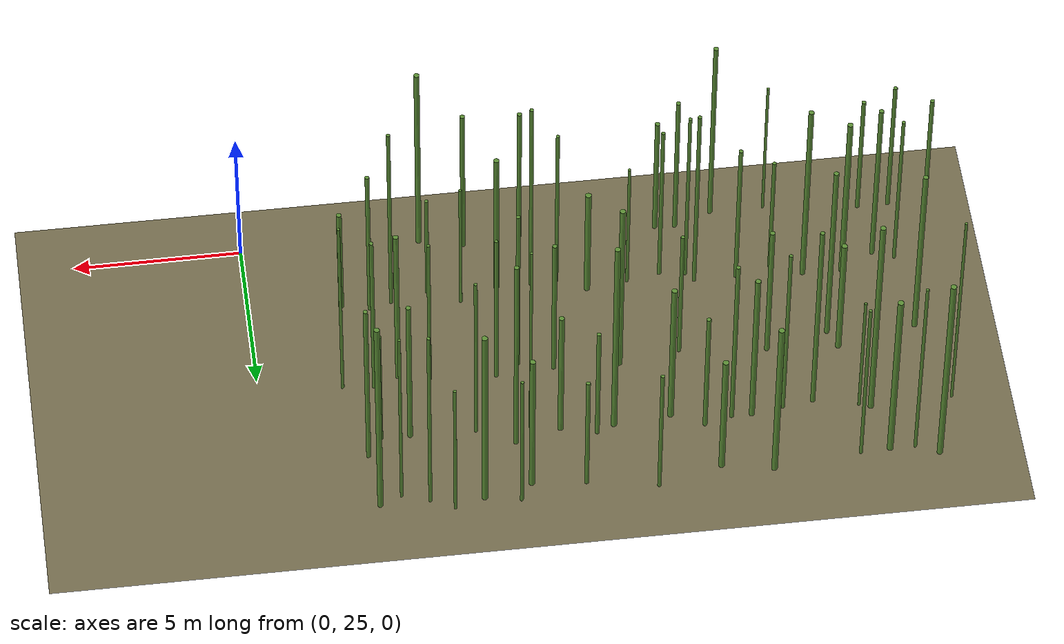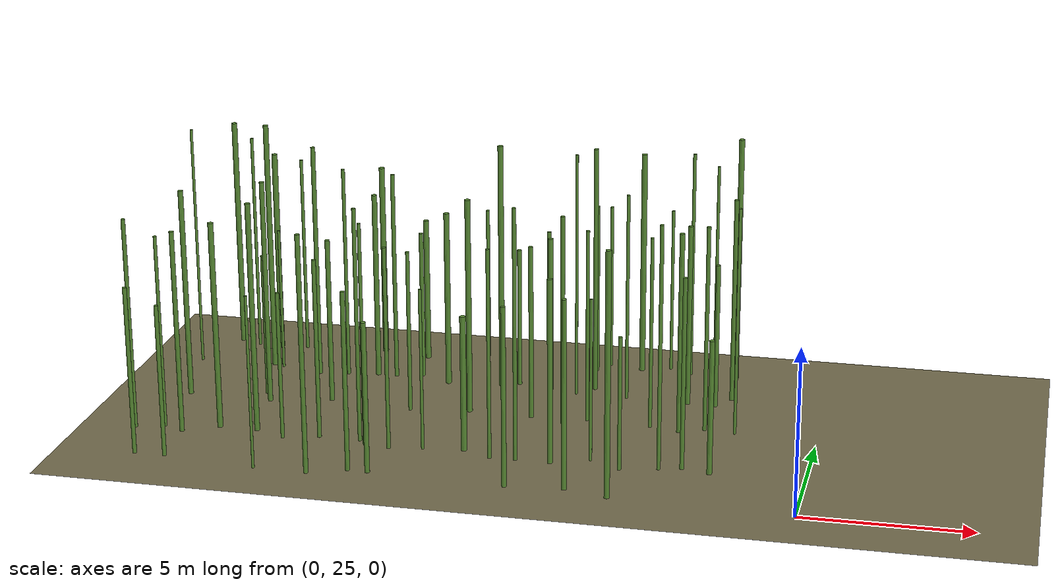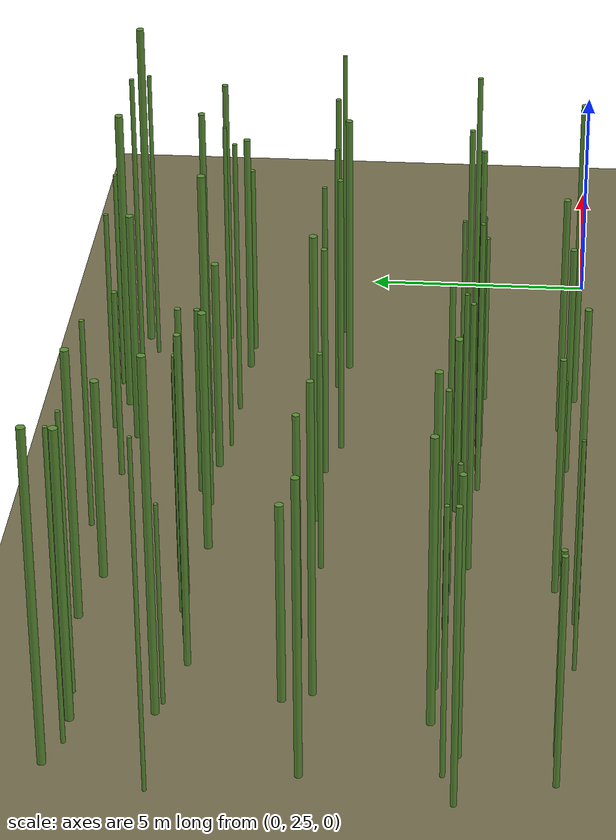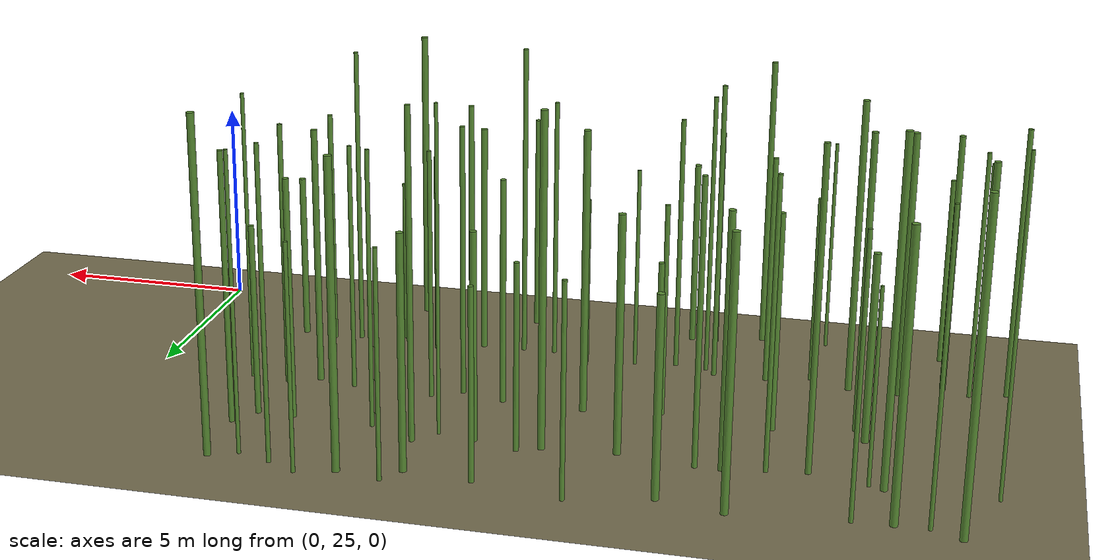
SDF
<sdf version="1.9">
 <world name="bamboo_field">
  <model name="ground_plane">
   <static>true</static>
   <link name="link">
    <collision name="collision">
     <geometry><plane><normal>0 0 1</normal><size>80.0 80.0</size></plane></geometry>
    </collision>
    <visual name="visual">
     <geometry><plane><normal>0 0 1</normal><size>80.0 80.0</size></plane></geometry>
     <material><diffuse>0.45 0.42 0.30 1</diffuse></material>
    </visual>
   </link>
  </model>
  <model name="bamboo_1699">
   <static>true</static>
   <pose>-19.48246002380169 25.367734125350342 2.5699282483919275 0 0 0</pose>
   <link name="link">
    <collision name="collision">
     <geometry>
      <cylinder><radius>0.061285565998683705</radius><length>5.139856496783855</length></cylinder>
     </geometry>
    </collision>
    <visual name="visual">
     <geometry>
      <cylinder><radius>0.061285565998683705</radius><length>5.139856496783855</length></cylinder>
     </geometry>
     <material><diffuse>0.35 0.55 0.20 1</diffuse><specular>0.1 0.1 0.1 1</specular></material>
    </visual>
   </link>
  </model>
  <model name="bamboo_1700">
   <static>true</static>
   <pose>-18.561662377056688 25.376804361869656 2.32708575424874 0 0 0</pose>
   <link name="link">
    <collision name="collision">
     <geometry>
      <cylinder><radius>0.06108684449624939</radius><length>4.65417150849748</length></cylinder>
     </geometry>
    </collision>
    <visual name="visual">
     <geometry>
      <cylinder><radius>0.06108684449624939</radius><length>4.65417150849748</length></cylinder>
     </geometry>
     <material><diffuse>0.35 0.55 0.20 1</diffuse><specular>0.1 0.1 0.1 1</specular></material>
    </visual>
   </link>
  </model>
  <model name="bamboo_1701">
   <static>true</static>
   <pose>-15.731640753012478 25.061634815160502 2.6380515564790294 0 0 0</pose>
   <link name="link">
    <collision name="collision">
     <geometry>
      <cylinder><radius>0.040611224457950804</radius><length>5.276103112958059</length></cylinder>
     </geometry>
    </collision>
    <visual name="visual">
     <geometry>
      <cylinder><radius>0.040611224457950804</radius><length>5.276103112958059</length></cylinder>
     </geometry>
     <material><diffuse>0.35 0.55 0.20 1</diffuse><specular>0.1 0.1 0.1 1</specular></material>
    </visual>
   </link>
  </model>
  <model name="bamboo_1703">
   <static>true</static>
   <pose>-14.1333928948903 25.053819336167248 3.6048367903860044 0 0 0</pose>
   <link name="link">
    <collision name="collision">
     <geometry>
      <cylinder><radius>0.0701818023648579</radius><length>7.209673580772009</length></cylinder>
     </geometry>
    </collision>
    <visual name="visual">
     <geometry>
      <cylinder><radius>0.0701818023648579</radius><length>7.209673580772009</length></cylinder>
     </geometry>
     <material><diffuse>0.35 0.55 0.20 1</diffuse><specular>0.1 0.1 0.1 1</specular></material>
    </visual>
   </link>
  </model>
  <model name="bamboo_1704">
   <static>true</static>
   <pose>-13.009316633082662 25.479355770893243 2.7297235743950625 0 0 0</pose>
   <link name="link">
    <collision name="collision">
     <geometry>
      <cylinder><radius>0.06675120829484248</radius><length>5.459447148790125</length></cylinder>
     </geometry>
    </collision>
    <visual name="visual">
     <geometry>
      <cylinder><radius>0.06675120829484248</radius><length>5.459447148790125</length></cylinder>
     </geometry>
     <material><diffuse>0.35 0.55 0.20 1</diffuse><specular>0.1 0.1 0.1 1</specular></material>
    </visual>
   </link>
  </model>
  <model name="bamboo_1705">
   <static>true</static>
   <pose>-12.410497305412347 25.446765568639556 2.3007744402729977 0 0 0</pose>
   <link name="link">
    <collision name="collision">
     <geometry>
      <cylinder><radius>0.0737359454780851</radius><length>4.601548880545995</length></cylinder>
     </geometry>
    </collision>
    <visual name="visual">
     <geometry>
      <cylinder><radius>0.0737359454780851</radius><length>4.601548880545995</length></cylinder>
     </geometry>
     <material><diffuse>0.35 0.55 0.20 1</diffuse><specular>0.1 0.1 0.1 1</specular></material>
    </visual>
   </link>
  </model>
  <model name="bamboo_1709">
   <static>true</static>
   <pose>-8.327943487058882 25.30991782958421 2.714488964258199 0 0 0</pose>
   <link name="link">
    <collision name="collision">
     <geometry>
      <cylinder><radius>0.06978894528436783</radius><length>5.428977928516398</length></cylinder>
     </geometry>
    </collision>
    <visual name="visual">
     <geometry>
      <cylinder><radius>0.06978894528436783</radius><length>5.428977928516398</length></cylinder>
     </geometry>
     <material><diffuse>0.35 0.55 0.20 1</diffuse><specular>0.1 0.1 0.1 1</specular></material>
    </visual>
   </link>
  </model>
  <model name="bamboo_1710">
   <static>true</static>
   <pose>-6.624005052112362 25.47313855809536 2.8622010930287343 0 0 0</pose>
   <link name="link">
    <collision name="collision">
     <geometry>
      <cylinder><radius>0.07164600115025427</radius><length>5.7244021860574685</length></cylinder>
     </geometry>
    </collision>
    <visual name="visual">
     <geometry>
      <cylinder><radius>0.07164600115025427</radius><length>5.7244021860574685</length></cylinder>
     </geometry>
     <material><diffuse>0.35 0.55 0.20 1</diffuse><specular>0.1 0.1 0.1 1</specular></material>
    </visual>
   </link>
  </model>
  <model name="bamboo_1711">
   <static>true</static>
   <pose>-5.327814186927504 25.15933273862661 3.6698358048836335 0 0 0</pose>
   <link name="link">
    <collision name="collision">
     <geometry>
      <cylinder><radius>0.08127857048197853</radius><length>7.339671609767267</length></cylinder>
     </geometry>
    </collision>
    <visual name="visual">
     <geometry>
      <cylinder><radius>0.08127857048197853</radius><length>7.339671609767267</length></cylinder>
     </geometry>
     <material><diffuse>0.35 0.55 0.20 1</diffuse><specular>0.1 0.1 0.1 1</specular></material>
    </visual>
   </link>
  </model>
  <model name="bamboo_1770">
   <static>true</static>
   <pose>-20.188963223017147 27.253954123116273 3.275765950783475 0 0 0</pose>
   <link name="link">
    <collision name="collision">
     <geometry>
      <cylinder><radius>0.06215991666258562</radius><length>6.55153190156695</length></cylinder>
     </geometry>
    </collision>
    <visual name="visual">
     <geometry>
      <cylinder><radius>0.06215991666258562</radius><length>6.55153190156695</length></cylinder>
     </geometry>
     <material><diffuse>0.35 0.55 0.20 1</diffuse><specular>0.1 0.1 0.1 1</specular></material>
    </visual>
   </link>
  </model>
  <model name="bamboo_1771">
   <static>true</static>
   <pose>-19.330448469256837 27.497374817100873 3.0035593406168193 0 0 0</pose>
   <link name="link">
    <collision name="collision">
     <geometry>
      <cylinder><radius>0.05066082243144524</radius><length>6.007118681233639</length></cylinder>
     </geometry>
    </collision>
    <visual name="visual">
     <geometry>
      <cylinder><radius>0.05066082243144524</radius><length>6.007118681233639</length></cylinder>
     </geometry>
     <material><diffuse>0.35 0.55 0.20 1</diffuse><specular>0.1 0.1 0.1 1</specular></material>
    </visual>
   </link>
  </model>
  <model name="bamboo_1772">
   <static>true</static>
   <pose>-18.705074369912523 27.23556656107094 3.142016852973211 0 0 0</pose>
   <link name="link">
    <collision name="collision">
     <geometry>
      <cylinder><radius>0.07047633439685848</radius><length>6.284033705946422</length></cylinder>
     </geometry>
    </collision>
    <visual name="visual">
     <geometry>
      <cylinder><radius>0.07047633439685848</radius><length>6.284033705946422</length></cylinder>
     </geometry>
     <material><diffuse>0.35 0.55 0.20 1</diffuse><specular>0.1 0.1 0.1 1</specular></material>
    </visual>
   </link>
  </model>
  <model name="bamboo_1773">
   <static>true</static>
   <pose>-17.69674091146032 27.795790040842505 3.2202464589862636 0 0 0</pose>
   <link name="link">
    <collision name="collision">
     <geometry>
      <cylinder><radius>0.08261786422056822</radius><length>6.440492917972527</length></cylinder>
     </geometry>
    </collision>
    <visual name="visual">
     <geometry>
      <cylinder><radius>0.08261786422056822</radius><length>6.440492917972527</length></cylinder>
     </geometry>
     <material><diffuse>0.35 0.55 0.20 1</diffuse><specular>0.1 0.1 0.1 1</specular></material>
    </visual>
   </link>
  </model>
  <model name="bamboo_1774">
   <static>true</static>
   <pose>-16.525703778261047 27.779085635165725 3.5595098246107737 0 0 0</pose>
   <link name="link">
    <collision name="collision">
     <geometry>
      <cylinder><radius>0.07943743162487044</radius><length>7.119019649221547</length></cylinder>
     </geometry>
    </collision>
    <visual name="visual">
     <geometry>
      <cylinder><radius>0.07943743162487044</radius><length>7.119019649221547</length></cylinder>
     </geometry>
     <material><diffuse>0.35 0.55 0.20 1</diffuse><specular>0.1 0.1 0.1 1</specular></material>
    </visual>
   </link>
  </model>
  <model name="bamboo_1775">
   <static>true</static>
   <pose>-15.591873823828186 27.373848653330235 2.2899730549191295 0 0 0</pose>
   <link name="link">
    <collision name="collision">
     <geometry>
      <cylinder><radius>0.05518090604647663</radius><length>4.579946109838259</length></cylinder>
     </geometry>
    </collision>
    <visual name="visual">
     <geometry>
      <cylinder><radius>0.05518090604647663</radius><length>4.579946109838259</length></cylinder>
     </geometry>
     <material><diffuse>0.35 0.55 0.20 1</diffuse><specular>0.1 0.1 0.1 1</specular></material>
    </visual>
   </link>
  </model>
  <model name="bamboo_1776">
   <static>true</static>
   <pose>-14.535407218154361 27.65965107413659 2.787084412018884 0 0 0</pose>
   <link name="link">
    <collision name="collision">
     <geometry>
      <cylinder><radius>0.061264895634087324</radius><length>5.574168824037768</length></cylinder>
     </geometry>
    </collision>
    <visual name="visual">
     <geometry>
      <cylinder><radius>0.061264895634087324</radius><length>5.574168824037768</length></cylinder>
     </geometry>
     <material><diffuse>0.35 0.55 0.20 1</diffuse><specular>0.1 0.1 0.1 1</specular></material>
    </visual>
   </link>
  </model>
  <model name="bamboo_1777">
   <static>true</static>
   <pose>-13.283271290641306 27.66302917284762 3.6107415130724054 0 0 0</pose>
   <link name="link">
    <collision name="collision">
     <geometry>
      <cylinder><radius>0.05768059791840341</radius><length>7.221483026144811</length></cylinder>
     </geometry>
    </collision>
    <visual name="visual">
     <geometry>
      <cylinder><radius>0.05768059791840341</radius><length>7.221483026144811</length></cylinder>
     </geometry>
     <material><diffuse>0.35 0.55 0.20 1</diffuse><specular>0.1 0.1 0.1 1</specular></material>
    </visual>
   </link>
  </model>
  <model name="bamboo_1778">
   <static>true</static>
   <pose>-13.051611649596147 27.387527783974686 3.433345396160026 0 0 0</pose>
   <link name="link">
    <collision name="collision">
     <geometry><cylinder><radius>0.050430452101698</radius><length>6.866690792320052</length></cylinder></geometry>
    </collision>
    <visual name="visual">
     <geometry><cylinder><radius>0.050430452101698</radius><length>6.866690792320052</length></cylinder></geometry>
     <material><diffuse>0.35 0.55 0.20 1</diffuse><specular>0.1 0.1 0.1 1</specular></material>
    </visual>
   </link>
  </model>
  <model name="bamboo_1779">
   <static>true</static>
   <pose>-12.289614652847362 27.276581051332286 3.1199445238562964 0 0 0</pose>
   <link name="link">
    <collision name="collision">
     <geometry>
      <cylinder><radius>0.056284256636376734</radius><length>6.239889047712593</length></cylinder>
     </geometry>
    </collision>
    <visual name="visual">
     <geometry>
      <cylinder><radius>0.056284256636376734</radius><length>6.239889047712593</length></cylinder>
     </geometry>
     <material><diffuse>0.35 0.55 0.20 1</diffuse><specular>0.1 0.1 0.1 1</specular></material>
    </visual>
   </link>
  </model>
  <model name="bamboo_1780">
   <static>true</static>
   <pose>-11.300215659863339 27.46187304216942 2.4862756305995277 0 0 0</pose>
   <link name="link">
    <collision name="collision">
     <geometry>
      <cylinder><radius>0.04534172880441953</radius><length>4.972551261199055</length></cylinder>
     </geometry>
    </collision>
    <visual name="visual">
     <geometry>
      <cylinder><radius>0.04534172880441953</radius><length>4.972551261199055</length></cylinder>
     </geometry>
     <material><diffuse>0.35 0.55 0.20 1</diffuse><specular>0.1 0.1 0.1 1</specular></material>
    </visual>
   </link>
  </model>
  <model name="bamboo_1781">
   <static>true</static>
   <pose>-10.077955429052208 27.60755582941468 2.0919999000613085 0 0 0</pose>
   <link name="link">
    <collision name="collision">
     <geometry>
      <cylinder><radius>0.08855665860574995</radius><length>4.183999800122617</length></cylinder>
     </geometry>
    </collision>
    <visual name="visual">
     <geometry>
      <cylinder><radius>0.08855665860574995</radius><length>4.183999800122617</length></cylinder>
     </geometry>
     <material><diffuse>0.35 0.55 0.20 1</diffuse><specular>0.1 0.1 0.1 1</specular></material>
    </visual>
   </link>
  </model>
  <model name="bamboo_1782">
   <static>true</static>
   <pose>-9.213479981732215 27.197103094493315 3.2134096858816497 0 0 0</pose>
   <link name="link">
    <collision name="collision">
     <geometry>
      <cylinder><radius>0.054007130632895674</radius><length>6.426819371763299</length></cylinder>
     </geometry>
    </collision>
    <visual name="visual">
     <geometry>
      <cylinder><radius>0.054007130632895674</radius><length>6.426819371763299</length></cylinder>
     </geometry>
     <material><diffuse>0.35 0.55 0.20 1</diffuse><specular>0.1 0.1 0.1 1</specular></material>
    </visual>
   </link>
  </model>
  <model name="bamboo_1783">
   <static>true</static>
   <pose>-8.44242023524445 27.220094466969197 3.8472121847306986 0 0 0</pose>
   <link name="link">
    <collision name="collision">
     <geometry>
      <cylinder><radius>0.05847244144906266</radius><length>7.694424369461397</length></cylinder>
     </geometry>
    </collision>
    <visual name="visual">
     <geometry>
      <cylinder><radius>0.05847244144906266</radius><length>7.694424369461397</length></cylinder>
     </geometry>
     <material><diffuse>0.35 0.55 0.20 1</diffuse><specular>0.1 0.1 0.1 1</specular></material>
    </visual>
   </link>
  </model>
  <model name="bamboo_1784">
   <static>true</static>
   <pose>-7.413970494156057 27.23138885571247 2.827554759745459 0 0 0</pose>
   <link name="link">
    <collision name="collision">
     <geometry>
      <cylinder><radius>0.07876214538978377</radius><length>5.655109519490918</length></cylinder>
     </geometry>
    </collision>
    <visual name="visual">
     <geometry>
      <cylinder><radius>0.07876214538978377</radius><length>5.655109519490918</length></cylinder>
     </geometry>
     <material><diffuse>0.35 0.55 0.20 1</diffuse><specular>0.1 0.1 0.1 1</specular></material>
    </visual>
   </link>
  </model>
  <model name="bamboo_1785">
   <static>true</static>
   <pose>-6.299755836160362 27.66004616579313 2.4904533375478106 0 0 0</pose>
   <link name="link">
    <collision name="collision">
     <geometry>
      <cylinder><radius>0.04440025792951181</radius><length>4.980906675095621</length></cylinder>
     </geometry>
    </collision>
    <visual name="visual">
     <geometry>
      <cylinder><radius>0.04440025792951181</radius><length>4.980906675095621</length></cylinder>
     </geometry>
     <material><diffuse>0.35 0.55 0.20 1</diffuse><specular>0.1 0.1 0.1 1</specular></material>
    </visual>
   </link>
  </model>
  <model name="bamboo_1786">
   <static>true</static>
   <pose>-5.355910900273843 27.17369788806803 2.0437036177585655 0 0 0</pose>
   <link name="link">
    <collision name="collision">
     <geometry>
      <cylinder><radius>0.05457096922754129</radius><length>4.087407235517131</length></cylinder>
     </geometry>
    </collision>
    <visual name="visual">
     <geometry>
      <cylinder><radius>0.05457096922754129</radius><length>4.087407235517131</length></cylinder>
     </geometry>
     <material><diffuse>0.35 0.55 0.20 1</diffuse><specular>0.1 0.1 0.1 1</specular></material>
    </visual>
   </link>
  </model>
  <model name="bamboo_1787">
   <static>true</static>
   <pose>-4.248448670085752 27.43818341350908 3.7068666571561932 0 0 0</pose>
   <link name="link">
    <collision name="collision">
     <geometry>
      <cylinder><radius>0.05569806186750536</radius><length>7.4137333143123865</length></cylinder>
     </geometry>
    </collision>
    <visual name="visual">
     <geometry>
      <cylinder><radius>0.05569806186750536</radius><length>7.4137333143123865</length></cylinder>
     </geometry>
     <material><diffuse>0.35 0.55 0.20 1</diffuse><specular>0.1 0.1 0.1 1</specular></material>
    </visual>
   </link>
  </model>
  <model name="bamboo_1788">
   <static>true</static>
   <pose>-3.59507856100208 27.600463314841605 2.9216073805422154 0 0 0</pose>
   <link name="link">
    <collision name="collision">
     <geometry>
      <cylinder><radius>0.06341631994682635</radius><length>5.843214761084431</length></cylinder>
     </geometry>
    </collision>
    <visual name="visual">
     <geometry>
      <cylinder><radius>0.06341631994682635</radius><length>5.843214761084431</length></cylinder>
     </geometry>
     <material><diffuse>0.35 0.55 0.20 1</diffuse><specular>0.1 0.1 0.1 1</specular></material>
    </visual>
   </link>
  </model>
  <model name="bamboo_1789">
   <static>true</static>
   <pose>-2.7631295995810605 27.413640418533337 2.0462766161601236 0 0 0</pose>
   <link name="link">
    <collision name="collision">
     <geometry>
      <cylinder><radius>0.07738251400466309</radius><length>4.092553232320247</length></cylinder>
     </geometry>
    </collision>
    <visual name="visual">
     <geometry>
      <cylinder><radius>0.07738251400466309</radius><length>4.092553232320247</length></cylinder>
     </geometry>
     <material><diffuse>0.35 0.55 0.20 1</diffuse><specular>0.1 0.1 0.1 1</specular></material>
    </visual>
   </link>
  </model>
  <model name="bamboo_1839">
   <static>true</static>
   <pose>-19.504407058023208 30.185342905355405 3.29216924934103 0 0 0</pose>
   <link name="link">
    <collision name="collision">
     <geometry>
      <cylinder><radius>0.07931564247587436</radius><length>6.58433849868206</length></cylinder>
     </geometry>
    </collision>
    <visual name="visual">
     <geometry>
      <cylinder><radius>0.07931564247587436</radius><length>6.58433849868206</length></cylinder>
     </geometry>
     <material><diffuse>0.35 0.55 0.20 1</diffuse><specular>0.1 0.1 0.1 1</specular></material>
    </visual>
   </link>
  </model>
  <model name="bamboo_1840">
   <static>true</static>
   <pose>-17.141273785375784 30.71102177094178 2.2469428438839163 0 0 0</pose>
   <link name="link">
    <collision name="collision">
     <geometry>
      <cylinder><radius>0.08463192500227709</radius><length>4.493885687767833</length></cylinder>
     </geometry>
    </collision>
    <visual name="visual">
     <geometry>
      <cylinder><radius>0.08463192500227709</radius><length>4.493885687767833</length></cylinder>
     </geometry>
     <material><diffuse>0.35 0.55 0.20 1</diffuse><specular>0.1 0.1 0.1 1</specular></material>
    </visual>
   </link>
  </model>
  <model name="bamboo_1841">
   <static>true</static>
   <pose>-16.890755468466775 30.132087406129795 3.5211691905181026 0 0 0</pose>
   <link name="link">
    <collision name="collision">
     <geometry>
      <cylinder><radius>0.07361190344224508</radius><length>7.042338381036205</length></cylinder>
     </geometry>
    </collision>
    <visual name="visual">
     <geometry>
      <cylinder><radius>0.07361190344224508</radius><length>7.042338381036205</length></cylinder>
     </geometry>
     <material><diffuse>0.35 0.55 0.20 1</diffuse><specular>0.1 0.1 0.1 1</specular></material>
    </visual>
   </link>
  </model>
  <model name="bamboo_1842">
   <static>true</static>
   <pose>-15.035006118558043 30.57002120845575 2.597644430730348 0 0 0</pose>
   <link name="link">
    <collision name="collision">
     <geometry>
      <cylinder><radius>0.07302107171649933</radius><length>5.195288861460696</length></cylinder>
     </geometry>
    </collision>
    <visual name="visual">
     <geometry>
      <cylinder><radius>0.07302107171649933</radius><length>5.195288861460696</length></cylinder>
     </geometry>
     <material><diffuse>0.35 0.55 0.20 1</diffuse><specular>0.1 0.1 0.1 1</specular></material>
    </visual>
   </link>
  </model>
  <model name="bamboo_1843">
   <static>true</static>
   <pose>-12.457495522394701 30.317034194397213 2.5442055754287227 0 0 0</pose>
   <link name="link">
    <collision name="collision">
     <geometry>
      <cylinder><radius>0.05706885951579938</radius><length>5.088411150857445</length></cylinder>
     </geometry>
    </collision>
    <visual name="visual">
     <geometry>
      <cylinder><radius>0.05706885951579938</radius><length>5.088411150857445</length></cylinder>
     </geometry>
     <material><diffuse>0.35 0.55 0.20 1</diffuse><specular>0.1 0.1 0.1 1</specular></material>
    </visual>
   </link>
  </model>
  <model name="bamboo_1844">
   <static>true</static>
   <pose>-10.64989120513955 30.58090466996651 3.38287384607652 0 0 0</pose>
   <link name="link">
    <collision name="collision">
     <geometry>
      <cylinder><radius>0.08381211612737204</radius><length>6.76574769215304</length></cylinder>
     </geometry>
    </collision>
    <visual name="visual">
     <geometry>
      <cylinder><radius>0.08381211612737204</radius><length>6.76574769215304</length></cylinder>
     </geometry>
     <material><diffuse>0.35 0.55 0.20 1</diffuse><specular>0.1 0.1 0.1 1</specular></material>
    </visual>
   </link>
  </model>
  <model name="bamboo_1845">
   <static>true</static>
   <pose>-8.708561744878514 30.51542042441586 2.725098762531468 0 0 0</pose>
   <link name="link">
    <collision name="collision">
     <geometry>
      <cylinder><radius>0.06995234909098039</radius><length>5.450197525062936</length></cylinder>
     </geometry>
    </collision>
    <visual name="visual">
     <geometry>
      <cylinder><radius>0.06995234909098039</radius><length>5.450197525062936</length></cylinder>
     </geometry>
     <material><diffuse>0.35 0.55 0.20 1</diffuse><specular>0.1 0.1 0.1 1</specular></material>
    </visual>
   </link>
  </model>
  <model name="bamboo_1846">
   <static>true</static>
   <pose>-7.676813928937048 30.246125492255 3.2761198148904755 0 0 0</pose>
   <link name="link">
    <collision name="collision">
     <geometry>
      <cylinder><radius>0.06108370589340199</radius><length>6.552239629780951</length></cylinder>
     </geometry>
    </collision>
    <visual name="visual">
     <geometry>
      <cylinder><radius>0.06108370589340199</radius><length>6.552239629780951</length></cylinder>
     </geometry>
     <material><diffuse>0.35 0.55 0.20 1</diffuse><specular>0.1 0.1 0.1 1</specular></material>
    </visual>
   </link>
  </model>
  <model name="bamboo_1847">
   <static>true</static>
   <pose>-6.9990583010001775 30.63539037003811 3.015647103321994 0 0 0</pose>
   <link name="link">
    <collision name="collision">
     <geometry>
      <cylinder><radius>0.05258354024598949</radius><length>6.031294206643988</length></cylinder>
     </geometry>
    </collision>
    <visual name="visual">
     <geometry>
      <cylinder><radius>0.05258354024598949</radius><length>6.031294206643988</length></cylinder>
     </geometry>
     <material><diffuse>0.35 0.55 0.20 1</diffuse><specular>0.1 0.1 0.1 1</specular></material>
    </visual>
   </link>
  </model>
  <model name="bamboo_1848">
   <static>true</static>
   <pose>-5.045363907777735 30.515922938061863 2.98995216520709 0 0 0</pose>
   <link name="link">
    <collision name="collision">
     <geometry>
      <cylinder><radius>0.05213721095986072</radius><length>5.97990433041418</length></cylinder>
     </geometry>
    </collision>
    <visual name="visual">
     <geometry>
      <cylinder><radius>0.05213721095986072</radius><length>5.97990433041418</length></cylinder>
     </geometry>
     <material><diffuse>0.35 0.55 0.20 1</diffuse><specular>0.1 0.1 0.1 1</specular></material>
    </visual>
   </link>
  </model>
  <model name="bamboo_1849">
   <static>true</static>
   <pose>-4.131348415046267 30.313058634909687 3.1213415206468196 0 0 0</pose>
   <link name="link">
    <collision name="collision">
     <geometry>
      <cylinder><radius>0.0754264544277869</radius><length>6.242683041293639</length></cylinder>
     </geometry>
    </collision>
    <visual name="visual">
     <geometry>
      <cylinder><radius>0.0754264544277869</radius><length>6.242683041293639</length></cylinder>
     </geometry>
     <material><diffuse>0.35 0.55 0.20 1</diffuse><specular>0.1 0.1 0.1 1</specular></material>
    </visual>
   </link>
  </model>
  <model name="bamboo_1850">
   <static>true</static>
   <pose>-3.3967099950085857 30.60550297449227 3.2033246175616634 0 0 0</pose>
   <link name="link">
    <collision name="collision">
     <geometry>
      <cylinder><radius>0.059129361227937494</radius><length>6.406649235123327</length></cylinder>
     </geometry>
    </collision>
    <visual name="visual">
     <geometry>
      <cylinder><radius>0.059129361227937494</radius><length>6.406649235123327</length></cylinder>
     </geometry>
     <material><diffuse>0.35 0.55 0.20 1</diffuse><specular>0.1 0.1 0.1 1</specular></material>
    </visual>
   </link>
  </model>
  <model name="bamboo_1851">
   <static>true</static>
   <pose>-2.4758309486968186 30.520809572787837 3.5280613487752426 0 0 0</pose>
   <link name="link">
    <collision name="collision">
     <geometry>
      <cylinder><radius>0.045873668181422946</radius><length>7.056122697550485</length></cylinder>
     </geometry>
    </collision>
    <visual name="visual">
     <geometry>
      <cylinder><radius>0.045873668181422946</radius><length>7.056122697550485</length></cylinder>
     </geometry>
     <material><diffuse>0.35 0.55 0.20 1</diffuse><specular>0.1 0.1 0.1 1</specular></material>
    </visual>
   </link>
  </model>
  <model name="bamboo_1907">
   <static>true</static>
   <pose>-20.13638779919634 33.00976898529016 3.8441726771218887 0 0 0</pose>
   <link name="link">
    <collision name="collision">
     <geometry>
      <cylinder><radius>0.04077963547603558</radius><length>7.688345354243777</length></cylinder>
     </geometry>
    </collision>
    <visual name="visual">
     <geometry>
      <cylinder><radius>0.04077963547603558</radius><length>7.688345354243777</length></cylinder>
     </geometry>
     <material><diffuse>0.35 0.55 0.20 1</diffuse><specular>0.1 0.1 0.1 1</specular></material>
    </visual>
   </link>
  </model>
  <model name="bamboo_1908">
   <static>true</static>
   <pose>-17.72376899206878 33.10579686901673 3.9688039299407265 0 0 0</pose>
   <link name="link">
    <collision name="collision">
     <geometry>
      <cylinder><radius>0.0815652019272561</radius><length>7.937607859881453</length></cylinder>
     </geometry>
    </collision>
    <visual name="visual">
     <geometry>
      <cylinder><radius>0.0815652019272561</radius><length>7.937607859881453</length></cylinder>
     </geometry>
     <material><diffuse>0.35 0.55 0.20 1</diffuse><specular>0.1 0.1 0.1 1</specular></material>
    </visual>
   </link>
  </model>
  <model name="bamboo_1909">
   <static>true</static>
   <pose>-17.393694113068243 32.99516928501284 2.283338838797087 0 0 0</pose>
   <link name="link">
    <collision name="collision">
     <geometry>
      <cylinder><radius>0.04223783930984474</radius><length>4.566677677594174</length></cylinder>
     </geometry>
    </collision>
    <visual name="visual">
     <geometry>
      <cylinder><radius>0.04223783930984474</radius><length>4.566677677594174</length></cylinder>
     </geometry>
     <material><diffuse>0.35 0.55 0.20 1</diffuse><specular>0.1 0.1 0.1 1</specular></material>
    </visual>
   </link>
  </model>
  <model name="bamboo_1910">
   <static>true</static>
   <pose>-16.074904123191093 32.67060971772126 3.7274867579652042 0 0 0</pose>
   <link name="link">
    <collision name="collision">
     <geometry>
      <cylinder><radius>0.06852698665491208</radius><length>7.4549735159304085</length></cylinder>
     </geometry>
    </collision>
    <visual name="visual">
     <geometry>
      <cylinder><radius>0.06852698665491208</radius><length>7.4549735159304085</length></cylinder>
     </geometry>
     <material><diffuse>0.35 0.55 0.20 1</diffuse><specular>0.1 0.1 0.1 1</specular></material>
    </visual>
   </link>
  </model>
  <model name="bamboo_1911">
   <static>true</static>
   <pose>-15.17064383411061 32.81674421871506 3.380562514219096 0 0 0</pose>
   <link name="link">
    <collision name="collision">
     <geometry>
      <cylinder><radius>0.05363074682995803</radius><length>6.761125028438192</length></cylinder>
     </geometry>
    </collision>
    <visual name="visual">
     <geometry>
      <cylinder><radius>0.05363074682995803</radius><length>6.761125028438192</length></cylinder>
     </geometry>
     <material><diffuse>0.35 0.55 0.20 1</diffuse><specular>0.1 0.1 0.1 1</specular></material>
    </visual>
   </link>
  </model>
  <model name="bamboo_1912">
   <static>true</static>
   <pose>-14.230439580557263 32.96577228914085 2.976432982883237 0 0 0</pose>
   <link name="link">
    <collision name="collision">
     <geometry>
      <cylinder><radius>0.08083623207331647</radius><length>5.952865965766474</length></cylinder>
     </geometry>
    </collision>
    <visual name="visual">
     <geometry>
      <cylinder><radius>0.08083623207331647</radius><length>5.952865965766474</length></cylinder>
     </geometry>
     <material><diffuse>0.35 0.55 0.20 1</diffuse><specular>0.1 0.1 0.1 1</specular></material>
    </visual>
   </link>
  </model>
  <model name="bamboo_1913">
   <static>true</static>
   <pose>-13.636260715759418 32.97351425967473 3.3259260608181265 0 0 0</pose>
   <link name="link">
    <collision name="collision">
     <geometry>
      <cylinder><radius>0.06245641020271489</radius><length>6.651852121636253</length></cylinder>
     </geometry>
    </collision>
    <visual name="visual">
     <geometry>
      <cylinder><radius>0.06245641020271489</radius><length>6.651852121636253</length></cylinder>
     </geometry>
     <material><diffuse>0.35 0.55 0.20 1</diffuse><specular>0.1 0.1 0.1 1</specular></material>
    </visual>
   </link>
  </model>
  <model name="bamboo_1914">
   <static>true</static>
   <pose>-12.817066573750406 33.18764850830394 2.3667171230456185 0 0 0</pose>
   <link name="link">
    <collision name="collision">
     <geometry>
      <cylinder><radius>0.06442684027049701</radius><length>4.733434246091237</length></cylinder>
     </geometry>
    </collision>
    <visual name="visual">
     <geometry>
      <cylinder><radius>0.06442684027049701</radius><length>4.733434246091237</length></cylinder>
     </geometry>
     <material><diffuse>0.35 0.55 0.20 1</diffuse><specular>0.1 0.1 0.1 1</specular></material>
    </visual>
   </link>
  </model>
  <model name="bamboo_1915">
   <static>true</static>
   <pose>-11.868249843925584 32.726489699095 2.7964090747357426 0 0 0</pose>
   <link name="link">
    <collision name="collision">
     <geometry>
      <cylinder><radius>0.08653096597456159</radius><length>5.592818149471485</length></cylinder>
     </geometry>
    </collision>
    <visual name="visual">
     <geometry>
      <cylinder><radius>0.08653096597456159</radius><length>5.592818149471485</length></cylinder>
     </geometry>
     <material><diffuse>0.35 0.55 0.20 1</diffuse><specular>0.1 0.1 0.1 1</specular></material>
    </visual>
   </link>
  </model>
  <model name="bamboo_1916">
   <static>true</static>
   <pose>-10.179503297310125 32.8757733715298 3.900418148733721 0 0 0</pose>
   <link name="link">
    <collision name="collision">
     <geometry>
      <cylinder><radius>0.08420132793565321</radius><length>7.800836297467442</length></cylinder>
     </geometry>
    </collision>
    <visual name="visual">
     <geometry>
      <cylinder><radius>0.08420132793565321</radius><length>7.800836297467442</length></cylinder>
     </geometry>
     <material><diffuse>0.35 0.55 0.20 1</diffuse><specular>0.1 0.1 0.1 1</specular></material>
    </visual>
   </link>
  </model>
  <model name="bamboo_1917">
   <static>true</static>
   <pose>-9.65693072074711 33.110362634813214 2.2186877893121038 0 0 0</pose>
   <link name="link">
    <collision name="collision">
     <geometry>
      <cylinder><radius>0.06344784940735243</radius><length>4.4373755786242075</length></cylinder>
     </geometry>
    </collision>
    <visual name="visual">
     <geometry>
      <cylinder><radius>0.06344784940735243</radius><length>4.4373755786242075</length></cylinder>
     </geometry>
     <material><diffuse>0.35 0.55 0.20 1</diffuse><specular>0.1 0.1 0.1 1</specular></material>
    </visual>
   </link>
  </model>
  <model name="bamboo_1918">
   <static>true</static>
   <pose>-8.612466366034944 32.83387231413961 2.4835036908976527 0 0 0</pose>
   <link name="link">
    <collision name="collision">
     <geometry>
      <cylinder><radius>0.08032045568056417</radius><length>4.967007381795305</length></cylinder>
     </geometry>
    </collision>
    <visual name="visual">
     <geometry>
      <cylinder><radius>0.08032045568056417</radius><length>4.967007381795305</length></cylinder>
     </geometry>
     <material><diffuse>0.35 0.55 0.20 1</diffuse><specular>0.1 0.1 0.1 1</specular></material>
    </visual>
   </link>
  </model>
  <model name="bamboo_1919">
   <static>true</static>
   <pose>-7.7493343347779895 32.65947491800087 3.8672311828079713 0 0 0</pose>
   <link name="link">
    <collision name="collision">
     <geometry>
      <cylinder><radius>0.042052595340787154</radius><length>7.734462365615943</length></cylinder>
     </geometry>
    </collision>
    <visual name="visual">
     <geometry>
      <cylinder><radius>0.042052595340787154</radius><length>7.734462365615943</length></cylinder>
     </geometry>
     <material><diffuse>0.35 0.55 0.20 1</diffuse><specular>0.1 0.1 0.1 1</specular></material>
    </visual>
   </link>
  </model>
  <model name="bamboo_1920">
   <static>true</static>
   <pose>-7.26297167403134 33.19248640019178 3.8971788309918423 0 0 0</pose>
   <link name="link">
    <collision name="collision">
     <geometry>
      <cylinder><radius>0.06844006754987356</radius><length>7.7943576619836845</length></cylinder>
     </geometry>
    </collision>
    <visual name="visual">
     <geometry>
      <cylinder><radius>0.06844006754987356</radius><length>7.7943576619836845</length></cylinder>
     </geometry>
     <material><diffuse>0.35 0.55 0.20 1</diffuse><specular>0.1 0.1 0.1 1</specular></material>
    </visual>
   </link>
  </model>
  <model name="bamboo_1921">
   <static>true</static>
   <pose>-6.1592607034910385 32.63436458328257 3.2882703402106186 0 0 0</pose>
   <link name="link">
    <collision name="collision">
     <geometry>
      <cylinder><radius>0.050032464899704907</radius><length>6.576540680421237</length></cylinder>
     </geometry>
    </collision>
    <visual name="visual">
     <geometry>
      <cylinder><radius>0.050032464899704907</radius><length>6.576540680421237</length></cylinder>
     </geometry>
     <material><diffuse>0.35 0.55 0.20 1</diffuse><specular>0.1 0.1 0.1 1</specular></material>
    </visual>
   </link>
  </model>
  <model name="bamboo_1922">
   <static>true</static>
   <pose>-4.232935385307507 32.57576433881725 2.8777431849436415 0 0 0</pose>
   <link name="link">
    <collision name="collision">
     <geometry>
      <cylinder><radius>0.07290061083480011</radius><length>5.755486369887283</length></cylinder>
     </geometry>
    </collision>
    <visual name="visual">
     <geometry>
      <cylinder><radius>0.07290061083480011</radius><length>5.755486369887283</length></cylinder>
     </geometry>
     <material><diffuse>0.35 0.55 0.20 1</diffuse><specular>0.1 0.1 0.1 1</specular></material>
    </visual>
   </link>
  </model>
  <model name="bamboo_1923">
   <static>true</static>
   <pose>-3.369637479127929 32.5668955103087 2.2867269001472494 0 0 0</pose>
   <link name="link">
    <collision name="collision">
     <geometry>
      <cylinder><radius>0.06784265658300295</radius><length>4.573453800294499</length></cylinder>
     </geometry>
    </collision>
    <visual name="visual">
     <geometry>
      <cylinder><radius>0.06784265658300295</radius><length>4.573453800294499</length></cylinder>
     </geometry>
     <material><diffuse>0.35 0.55 0.20 1</diffuse><specular>0.1 0.1 0.1 1</specular></material>
    </visual>
   </link>
  </model>
  <model name="bamboo_1924">
   <static>true</static>
   <pose>-2.9517152549443946 33.18015671561835 3.23717245043043 0 0 0</pose>
   <link name="link">
    <collision name="collision">
     <geometry><cylinder><radius>0.0667136883055649</radius><length>6.47434490086086</length></cylinder></geometry>
    </collision>
    <visual name="visual">
     <geometry><cylinder><radius>0.0667136883055649</radius><length>6.47434490086086</length></cylinder></geometry>
     <material><diffuse>0.35 0.55 0.20 1</diffuse><specular>0.1 0.1 0.1 1</specular></material>
    </visual>
   </link>
  </model>
  <model name="bamboo_1975">
   <static>true</static>
   <pose>-19.444546599734604 35.04433621391146 3.6929632119121125 0 0 0</pose>
   <link name="link">
    <collision name="collision">
     <geometry>
      <cylinder><radius>0.08617230102280216</radius><length>7.385926423824225</length></cylinder>
     </geometry>
    </collision>
    <visual name="visual">
     <geometry>
      <cylinder><radius>0.08617230102280216</radius><length>7.385926423824225</length></cylinder>
     </geometry>
     <material><diffuse>0.35 0.55 0.20 1</diffuse><specular>0.1 0.1 0.1 1</specular></material>
    </visual>
   </link>
  </model>
  <model name="bamboo_1976">
   <static>true</static>
   <pose>-18.77178600235486 34.73693538757111 3.5011041668886564 0 0 0</pose>
   <link name="link">
    <collision name="collision">
     <geometry>
      <cylinder><radius>0.04710414452026009</radius><length>7.002208333777313</length></cylinder>
     </geometry>
    </collision>
    <visual name="visual">
     <geometry>
      <cylinder><radius>0.04710414452026009</radius><length>7.002208333777313</length></cylinder>
     </geometry>
     <material><diffuse>0.35 0.55 0.20 1</diffuse><specular>0.1 0.1 0.1 1</specular></material>
    </visual>
   </link>
  </model>
  <model name="bamboo_1977">
   <static>true</static>
   <pose>-18.030138429490574 34.72956462871512 3.2643860749808535 0 0 0</pose>
   <link name="link">
    <collision name="collision">
     <geometry>
      <cylinder><radius>0.08948810669416579</radius><length>6.528772149961707</length></cylinder>
     </geometry>
    </collision>
    <visual name="visual">
     <geometry>
      <cylinder><radius>0.08948810669416579</radius><length>6.528772149961707</length></cylinder>
     </geometry>
     <material><diffuse>0.35 0.55 0.20 1</diffuse><specular>0.1 0.1 0.1 1</specular></material>
    </visual>
   </link>
  </model>
  <model name="bamboo_1978">
   <static>true</static>
   <pose>-17.1644444302384 34.78619185613626 3.1858743272132117 0 0 0</pose>
   <link name="link">
    <collision name="collision">
     <geometry>
      <cylinder><radius>0.0486389974322314</radius><length>6.3717486544264235</length></cylinder>
     </geometry>
    </collision>
    <visual name="visual">
     <geometry>
      <cylinder><radius>0.0486389974322314</radius><length>6.3717486544264235</length></cylinder>
     </geometry>
     <material><diffuse>0.35 0.55 0.20 1</diffuse><specular>0.1 0.1 0.1 1</specular></material>
    </visual>
   </link>
  </model>
  <model name="bamboo_1979">
   <static>true</static>
   <pose>-14.58542815593214 35.06037385326637 3.0986572694431187 0 0 0</pose>
   <link name="link">
    <collision name="collision">
     <geometry>
      <cylinder><radius>0.08775978805639395</radius><length>6.197314538886237</length></cylinder>
     </geometry>
    </collision>
    <visual name="visual">
     <geometry>
      <cylinder><radius>0.08775978805639395</radius><length>6.197314538886237</length></cylinder>
     </geometry>
     <material><diffuse>0.35 0.55 0.20 1</diffuse><specular>0.1 0.1 0.1 1</specular></material>
    </visual>
   </link>
  </model>
  <model name="bamboo_1980">
   <static>true</static>
   <pose>-13.076984037933473 34.76163180499225 2.319641299357148 0 0 0</pose>
   <link name="link">
    <collision name="collision">
     <geometry>
      <cylinder><radius>0.08736654454901706</radius><length>4.639282598714296</length></cylinder>
     </geometry>
    </collision>
    <visual name="visual">
     <geometry>
      <cylinder><radius>0.08736654454901706</radius><length>4.639282598714296</length></cylinder>
     </geometry>
     <material><diffuse>0.35 0.55 0.20 1</diffuse><specular>0.1 0.1 0.1 1</specular></material>
    </visual>
   </link>
  </model>
  <model name="bamboo_1981">
   <static>true</static>
   <pose>-11.181128619305586 35.28233494566919 2.4703048395926164 0 0 0</pose>
   <link name="link">
    <collision name="collision">
     <geometry>
      <cylinder><radius>0.05446609278823353</radius><length>4.940609679185233</length></cylinder>
     </geometry>
    </collision>
    <visual name="visual">
     <geometry>
      <cylinder><radius>0.05446609278823353</radius><length>4.940609679185233</length></cylinder>
     </geometry>
     <material><diffuse>0.35 0.55 0.20 1</diffuse><specular>0.1 0.1 0.1 1</specular></material>
    </visual>
   </link>
  </model>
  <model name="bamboo_1982">
   <static>true</static>
   <pose>-9.10894070611252 34.917127499207915 2.2436947762834403 0 0 0</pose>
   <link name="link">
    <collision name="collision">
     <geometry>
      <cylinder><radius>0.061449871589104366</radius><length>4.4873895525668805</length></cylinder>
     </geometry>
    </collision>
    <visual name="visual">
     <geometry>
      <cylinder><radius>0.061449871589104366</radius><length>4.4873895525668805</length></cylinder>
     </geometry>
     <material><diffuse>0.35 0.55 0.20 1</diffuse><specular>0.1 0.1 0.1 1</specular></material>
    </visual>
   </link>
  </model>
  <model name="bamboo_1983">
   <static>true</static>
   <pose>-7.530336166553766 34.76398700776426 2.739135080059285 0 0 0</pose>
   <link name="link">
    <collision name="collision">
     <geometry><cylinder><radius>0.0832048768282434</radius><length>5.47827016011857</length></cylinder></geometry>
    </collision>
    <visual name="visual">
     <geometry><cylinder><radius>0.0832048768282434</radius><length>5.47827016011857</length></cylinder></geometry>
     <material><diffuse>0.35 0.55 0.20 1</diffuse><specular>0.1 0.1 0.1 1</specular></material>
    </visual>
   </link>
  </model>
  <model name="bamboo_1984">
   <static>true</static>
   <pose>-7.167399532328818 35.33011115955582 2.6524012340349223 0 0 0</pose>
   <link name="link">
    <collision name="collision">
     <geometry>
      <cylinder><radius>0.05047279944441346</radius><length>5.304802468069845</length></cylinder>
     </geometry>
    </collision>
    <visual name="visual">
     <geometry>
      <cylinder><radius>0.05047279944441346</radius><length>5.304802468069845</length></cylinder>
     </geometry>
     <material><diffuse>0.35 0.55 0.20 1</diffuse><specular>0.1 0.1 0.1 1</specular></material>
    </visual>
   </link>
  </model>
  <model name="bamboo_1985">
   <static>true</static>
   <pose>-6.117294536847323 35.12385337164188 3.573612276919653 0 0 0</pose>
   <link name="link">
    <collision name="collision">
     <geometry>
      <cylinder><radius>0.08862639362968044</radius><length>7.147224553839306</length></cylinder>
     </geometry>
    </collision>
    <visual name="visual">
     <geometry>
      <cylinder><radius>0.08862639362968044</radius><length>7.147224553839306</length></cylinder>
     </geometry>
     <material><diffuse>0.35 0.55 0.20 1</diffuse><specular>0.1 0.1 0.1 1</specular></material>
    </visual>
   </link>
  </model>
  <model name="bamboo_1986">
   <static>true</static>
   <pose>-5.230490060158565 35.399594491192744 2.643665504181312 0 0 0</pose>
   <link name="link">
    <collision name="collision">
     <geometry>
      <cylinder><radius>0.04635664238239597</radius><length>5.287331008362624</length></cylinder>
     </geometry>
    </collision>
    <visual name="visual">
     <geometry>
      <cylinder><radius>0.04635664238239597</radius><length>5.287331008362624</length></cylinder>
     </geometry>
     <material><diffuse>0.35 0.55 0.20 1</diffuse><specular>0.1 0.1 0.1 1</specular></material>
    </visual>
   </link>
  </model>
  <model name="bamboo_1987">
   <static>true</static>
   <pose>-4.539785047800152 35.048626292605924 3.6393139697477084 0 0 0</pose>
   <link name="link">
    <collision name="collision">
     <geometry>
      <cylinder><radius>0.05185089380045305</radius><length>7.278627939495417</length></cylinder>
     </geometry>
    </collision>
    <visual name="visual">
     <geometry>
      <cylinder><radius>0.05185089380045305</radius><length>7.278627939495417</length></cylinder>
     </geometry>
     <material><diffuse>0.35 0.55 0.20 1</diffuse><specular>0.1 0.1 0.1 1</specular></material>
    </visual>
   </link>
  </model>
  <model name="bamboo_1988">
   <static>true</static>
   <pose>-3.7375127775063657 34.77671488122422 3.5003846458845653 0 0 0</pose>
   <link name="link">
    <collision name="collision">
     <geometry>
      <cylinder><radius>0.044779132971220964</radius><length>7.000769291769131</length></cylinder>
     </geometry>
    </collision>
    <visual name="visual">
     <geometry>
      <cylinder><radius>0.044779132971220964</radius><length>7.000769291769131</length></cylinder>
     </geometry>
     <material><diffuse>0.35 0.55 0.20 1</diffuse><specular>0.1 0.1 0.1 1</specular></material>
    </visual>
   </link>
  </model>
  <model name="bamboo_1989">
   <static>true</static>
   <pose>-3.0914563608252172 35.03443896073061 3.916545491335196 0 0 0</pose>
   <link name="link">
    <collision name="collision">
     <geometry>
      <cylinder><radius>0.08454552864549468</radius><length>7.833090982670392</length></cylinder>
     </geometry>
    </collision>
    <visual name="visual">
     <geometry>
      <cylinder><radius>0.08454552864549468</radius><length>7.833090982670392</length></cylinder>
     </geometry>
     <material><diffuse>0.35 0.55 0.20 1</diffuse><specular>0.1 0.1 0.1 1</specular></material>
    </visual>
   </link>
  </model>
 </world>
</sdf>
